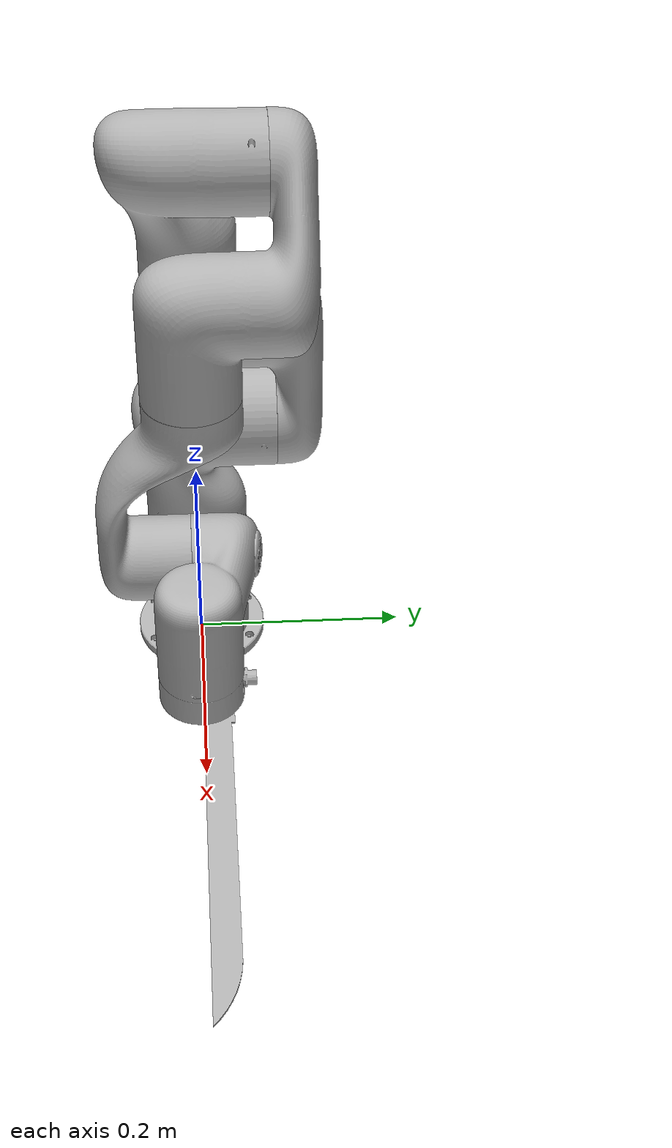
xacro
<?xml version="1.0" ?>
<robot name="Xarm6" xmlns:xacro="http://www.ros.org/wiki/xacro">

<xacro:include filename="materials.xacro" />
<xacro:include filename="Xarm6.trans" />
<xacro:include filename="Xarm6.gazebo" />
<link name="base_link">
  <inertial>
    <origin xyz="-0.0014966838440202384 9.275029853168595e-05 0.07347393172350347" rpy="0 0 0"/>
    <mass value="9.182566175577422"/>
    <inertia ixx="0.024904" iyy="0.025698" izz="0.011792" ixy="5.9e-05" iyz="3.8e-05" ixz="-0.000637"/>
  </inertial>
  <visual>
    <origin xyz="0 0 0" rpy="0 0 0"/>
    <geometry>
      <mesh filename="package://Xarm6_description/meshes/base_link.stl" scale="0.001 0.001 0.001"/>
    </geometry>
    <material name="silver"/>
  </visual>
  <collision>
    <origin xyz="0 0 0" rpy="0 0 0"/>
    <geometry>
      <mesh filename="package://Xarm6_description/meshes/base_link.stl" scale="0.001 0.001 0.001"/>
    </geometry>
  </collision>
</link>

<link name="link1_1_1_1">
  <inertial>
    <origin xyz="0.0002132169716367933 0.007397272830046666 0.0850878241893451" rpy="0 0 0"/>
    <mass value="10.406228242971363"/>
    <inertia ixx="0.030675" iyy="0.025411" izz="0.017209" ixy="-2.3e-05" iyz="-0.003241" ixz="-5.9e-05"/>
  </inertial>
  <visual>
    <origin xyz="-3e-06 -5e-06 -0.1548" rpy="0 0 0"/>
    <geometry>
      <mesh filename="package://Xarm6_description/meshes/link1_1_1_1.stl" scale="0.001 0.001 0.001"/>
    </geometry>
    <material name="silver"/>
  </visual>
  <collision>
    <origin xyz="-3e-06 -5e-06 -0.1548" rpy="0 0 0"/>
    <geometry>
      <mesh filename="package://Xarm6_description/meshes/link1_1_1_1.stl" scale="0.001 0.001 0.001"/>
    </geometry>
  </collision>
</link>

<link name="link2_1_1_1">
  <inertial>
    <origin xyz="0.013535388574605242 -0.04870515037578728 0.16519026278797577" rpy="0 0 0"/>
    <mass value="21.143001773162247"/>
    <inertia ixx="0.240188" iyy="0.213104" izz="0.068928" ixy="0.006223" iyz="0.059808" ixz="-0.034226"/>
  </inertial>
  <visual>
    <origin xyz="-0.000349 -0.075304 -0.266798" rpy="0 0 0"/>
    <geometry>
      <mesh filename="package://Xarm6_description/meshes/link2_1_1_1.stl" scale="0.001 0.001 0.001"/>
    </geometry>
    <material name="silver"/>
  </visual>
  <collision>
    <origin xyz="-0.000349 -0.075304 -0.266798" rpy="0 0 0"/>
    <geometry>
      <mesh filename="package://Xarm6_description/meshes/link2_1_1_1.stl" scale="0.001 0.001 0.001"/>
    </geometry>
  </collision>
</link>

<link name="link3_1_1_1">
  <inertial>
    <origin xyz="0.06336946362255372 -0.02985893230455631 -0.08140784089768266" rpy="0 0 0"/>
    <mass value="10.22532102231252"/>
    <inertia ixx="0.041465" iyy="0.035247" izz="0.030495" ixy="0.00708" iyz="-0.01272" ixz="0.010135"/>
  </inertial>
  <visual>
    <origin xyz="-0.053671 -0.067014 -0.55147" rpy="0 0 0"/>
    <geometry>
      <mesh filename="package://Xarm6_description/meshes/link3_1_1_1.stl" scale="0.001 0.001 0.001"/>
    </geometry>
    <material name="silver"/>
  </visual>
  <collision>
    <origin xyz="-0.053671 -0.067014 -0.55147" rpy="0 0 0"/>
    <geometry>
      <mesh filename="package://Xarm6_description/meshes/link3_1_1_1.stl" scale="0.001 0.001 0.001"/>
    </geometry>
  </collision>
</link>

<link name="link4_1_1_1">
  <inertial>
    <origin xyz="-0.0001590814276628827 -0.03244192062082851 -0.10206068450371575" rpy="0 0 0"/>
    <mass value="6.198939907886892"/>
    <inertia ixx="0.034346" iyy="0.030946" izz="0.00815" ixy="-2.8e-05" iyz="-0.007003" ixz="-1.6e-05"/>
  </inertial>
  <visual>
    <origin xyz="-0.131425 0.000482 -0.382365" rpy="0 0 0"/>
    <geometry>
      <mesh filename="package://Xarm6_description/meshes/link4_1_1_1.stl" scale="0.001 0.001 0.001"/>
    </geometry>
    <material name="silver"/>
  </visual>
  <collision>
    <origin xyz="-0.131425 0.000482 -0.382365" rpy="0 0 0"/>
    <geometry>
      <mesh filename="package://Xarm6_description/meshes/link4_1_1_1.stl" scale="0.001 0.001 0.001"/>
    </geometry>
  </collision>
</link>

<link name="link5_1_1_1">
  <inertial>
    <origin xyz="0.04893547801546441 0.013357760681958413 -0.01112659191452961" rpy="0 0 0"/>
    <mass value="5.676003654765444"/>
    <inertia ixx="0.006607" iyy="0.013098" izz="0.011418" ixy="0.00217" iyz="-0.000571" ixz="0.001709"/>
  </inertial>
  <visual>
    <origin xyz="-0.131434 0.005248 -0.209369" rpy="0 0 0"/>
    <geometry>
      <mesh filename="package://Xarm6_description/meshes/link5_1_1_1.stl" scale="0.001 0.001 0.001"/>
    </geometry>
    <material name="silver"/>
  </visual>
  <collision>
    <origin xyz="-0.131434 0.005248 -0.209369" rpy="0 0 0"/>
    <geometry>
      <mesh filename="package://Xarm6_description/meshes/link5_1_1_1.stl" scale="0.001 0.001 0.001"/>
    </geometry>
  </collision>
</link>

<link name="end_effector_1_1_1">
  <inertial>
    <origin xyz="0.017458665945886548 0.0026089112471743992 -0.015178589483564653" rpy="0 0 0"/>
    <mass value="1.0716475117579791"/>
    <inertia ixx="0.000482" iyy="0.004111" izz="0.004417" ixy="-0.000182" iyz="1.6e-05" ixz="0.000259"/>
  </inertial>
  <visual>
    <origin xyz="-0.207437 0.000906 -0.140853" rpy="0 0 0"/>
    <geometry>
      <mesh filename="package://Xarm6_description/meshes/end_effector_1_1_1.stl" scale="0.001 0.001 0.001"/>
    </geometry>
    <material name="silver"/>
  </visual>
  <collision>
    <origin xyz="-0.207437 0.000906 -0.140853" rpy="0 0 0"/>
    <geometry>
      <mesh filename="package://Xarm6_description/meshes/end_effector_1_1_1.stl" scale="0.001 0.001 0.001"/>
    </geometry>
  </collision>
</link>

<joint name="Revolute 25" type="continuous">
  <origin xyz="3e-06 5e-06 0.1548" rpy="0 0 0"/>
  <parent link="base_link"/>
  <child link="link1_1_1_1"/>
  <axis xyz="1.8e-05 3.2e-05 1.0"/>
</joint>

<joint name="Revolute 26" type="continuous">
  <origin xyz="0.000346 0.075299 0.111998" rpy="0 0 0"/>
  <parent link="link1_1_1_1"/>
  <child link="link2_1_1_1"/>
  <axis xyz="-6.4e-05 1.0 -3.2e-05"/>
</joint>

<joint name="Revolute 27" type="continuous">
  <origin xyz="0.053322 -0.00829 0.284672" rpy="0 0 0"/>
  <parent link="link2_1_1_1"/>
  <child link="link3_1_1_1"/>
  <axis xyz="-6.4e-05 1.0 -3.2e-05"/>
</joint>

<joint name="Revolute 28" type="continuous">
  <origin xyz="0.077754 -0.067496 -0.169105" rpy="0 0 0"/>
  <parent link="link3_1_1_1"/>
  <child link="link4_1_1_1"/>
  <axis xyz="5.6e-05 -3.2e-05 -1.0"/>
</joint>

<joint name="Revolute 29" type="continuous">
  <origin xyz="9e-06 -0.004766 -0.172996" rpy="0 0 0"/>
  <parent link="link4_1_1_1"/>
  <child link="link5_1_1_1"/>
  <axis xyz="-6.4e-05 1.0 -3.2e-05"/>
</joint>

<joint name="Revolute 30" type="continuous">
  <origin xyz="0.076003 0.004342 -0.068516" rpy="0 0 0"/>
  <parent link="link5_1_1_1"/>
  <child link="end_effector_1_1_1"/>
  <axis xyz="5.6e-05 -3.2e-05 -1.0"/>
</joint>

</robot>

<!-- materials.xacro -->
<robot name="Xarm6" xmlns:xacro="http://www.ros.org/wiki/xacro" >

<material name="silver">
  <color rgba="0.700 0.700 0.700 1.000"/>
</material>

</robot>

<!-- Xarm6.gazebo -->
<robot name="Xarm6" xmlns:xacro="http://www.ros.org/wiki/xacro" >

<xacro:property name="body_color" value="Gazebo/Silver" />

<gazebo>
  <plugin name="control" filename="libgazebo_ros_control.so"/>
</gazebo>
<gazebo reference="base_link">
  <material>${body_color}</material>
  <mu1>0.2</mu1>
  <mu2>0.2</mu2>
  <selfCollide>true</selfCollide>
  <gravity>true</gravity>
</gazebo>

<gazebo reference="link1_1_1_1">
  <material>${body_color}</material>
  <mu1>0.2</mu1>
  <mu2>0.2</mu2>
  <selfCollide>true</selfCollide>
</gazebo>

<gazebo reference="link2_1_1_1">
  <material>${body_color}</material>
  <mu1>0.2</mu1>
  <mu2>0.2</mu2>
  <selfCollide>true</selfCollide>
</gazebo>

<gazebo reference="link3_1_1_1">
  <material>${body_color}</material>
  <mu1>0.2</mu1>
  <mu2>0.2</mu2>
  <selfCollide>true</selfCollide>
</gazebo>

<gazebo reference="link4_1_1_1">
  <material>${body_color}</material>
  <mu1>0.2</mu1>
  <mu2>0.2</mu2>
  <selfCollide>true</selfCollide>
</gazebo>

<gazebo reference="link5_1_1_1">
  <material>${body_color}</material>
  <mu1>0.2</mu1>
  <mu2>0.2</mu2>
  <selfCollide>true</selfCollide>
</gazebo>

<gazebo reference="end_effector_1_1_1">
  <material>${body_color}</material>
  <mu1>0.2</mu1>
  <mu2>0.2</mu2>
  <selfCollide>true</selfCollide>
</gazebo>

</robot>
